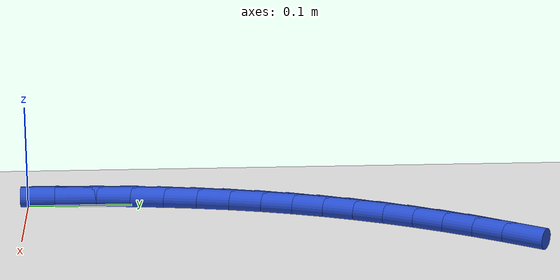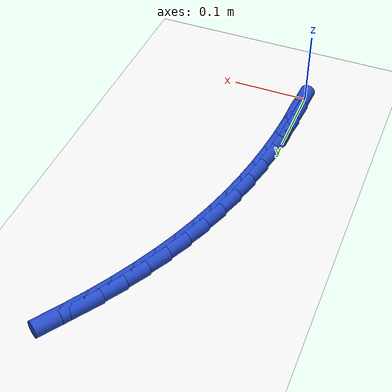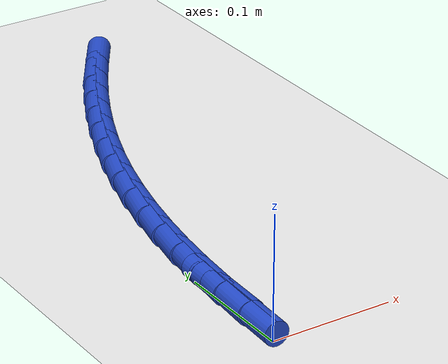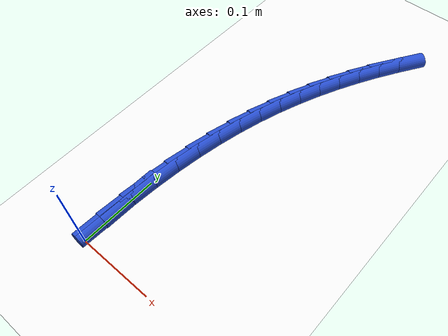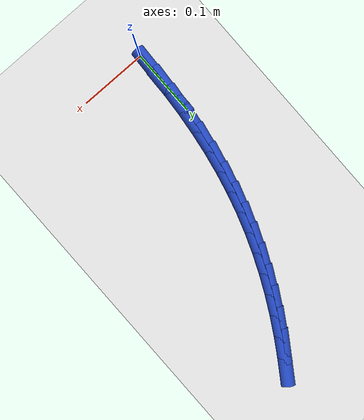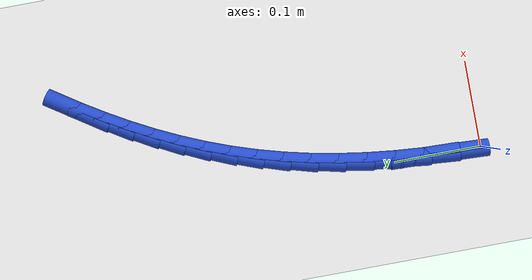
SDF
<sdf version="1.6">
 <world name="default">
  <model name="ground_plane">
   <static>1</static>
   <link name="link">
    <collision name="collision">
     <geometry><plane><normal>0 0 1</normal><size>100 100</size></plane></geometry>
     <surface><friction><ode><mu>100</mu><mu2>50</mu2></ode></friction></surface>
    </collision>
    <visual name="visual">
     <cast_shadows>0</cast_shadows>
     <geometry><plane><normal>0 0 1</normal><size>100 100</size></plane></geometry>
     <material>
      <script><uri>file://media/materials/scripts/gazebo.material</uri><name>Gazebo/WhiteGlow</name></script>
     </material>
    </visual>
   </link>
  </model>
  <model name="line">
   <link name="link_1">
    <pose>0.0003492366816804725 0.03347844089519005 0.01 0 1.57 1.5278373648724606</pose>
    <collision name="collision">
     <geometry><cylinder><radius>0.01</radius><length>0.08</length></cylinder></geometry>
    </collision>
    <visual name="visual">
     <material>
      <script><name>Gazebo/Blue</name><uri>file://media/materials/scripts/gazebo.material</uri></script>
     </material>
     <geometry><cylinder><radius>0.01</radius><length>0.08</length></cylinder></geometry>
    </visual>
   </link>
   <link name="link_2">
    <pose>0.0017802257063071424 0.06676855240438835 0.01 0 1.57 1.49415947058637</pose>
    <collision name="collision">
     <geometry><cylinder><radius>0.01</radius><length>0.08</length></cylinder></geometry>
    </collision>
    <visual name="visual">
     <material>
      <script><name>Gazebo/Blue</name><uri>file://media/materials/scripts/gazebo.material</uri></script>
     </material>
     <geometry><cylinder><radius>0.01</radius><length>0.08</length></cylinder></geometry>
    </visual>
   </link>
   <link name="link_3">
    <pose>0.004313374156254398 0.09975773537036464 0.01 0 1.57 1.4590416021160324</pose>
    <collision name="collision">
     <geometry><cylinder><radius>0.01</radius><length>0.08</length></cylinder></geometry>
    </collision>
    <visual name="visual">
     <material>
      <script><name>Gazebo/Blue</name><uri>file://media/materials/scripts/gazebo.material</uri></script>
     </material>
     <geometry><cylinder><radius>0.01</radius><length>0.08</length></cylinder></geometry>
    </visual>
   </link>
   <link name="link_4">
    <pose>0.00796908911389663 0.13233339063588856 0.01 0 1.57 1.4221731137450164</pose>
    <collision name="collision">
     <geometry><cylinder><radius>0.01</radius><length>0.08</length></cylinder></geometry>
    </collision>
    <visual name="visual">
     <material>
      <script><name>Gazebo/Blue</name><uri>file://media/materials/scripts/gazebo.material</uri></script>
     </material>
     <geometry><cylinder><radius>0.01</radius><length>0.08</length></cylinder></geometry>
    </visual>
   </link>
   <link name="link_5">
    <pose>0.012767777661608241 0.16438291904372976 0.01 0 1.57 1.3832182331818017</pose>
    <collision name="collision">
     <geometry><cylinder><radius>0.01</radius><length>0.08</length></cylinder></geometry>
    </collision>
    <visual name="visual">
     <material>
      <script><name>Gazebo/Blue</name><uri>file://media/materials/scripts/gazebo.material</uri></script>
     </material>
     <geometry><cylinder><radius>0.01</radius><length>0.08</length></cylinder></geometry>
    </visual>
   </link>
   <link name="link_6">
    <pose>0.018729846881763625 0.19579372143665794 0.01 0 1.57 1.341812516813903</pose>
    <collision name="collision">
     <geometry><cylinder><radius>0.01</radius><length>0.08</length></cylinder></geometry>
    </collision>
    <visual name="visual">
     <material>
      <script><name>Gazebo/Blue</name><uri>file://media/materials/scripts/gazebo.material</uri></script>
     </material>
     <geometry><cylinder><radius>0.01</radius><length>0.08</length></cylinder></geometry>
    </visual>
   </link>
   <link name="link_7">
    <pose>0.025875703856737174 0.22645319865744276 0.01 0 1.57 1.2979054790260176</pose>
    <collision name="collision">
     <geometry><cylinder><radius>0.01</radius><length>0.08</length></cylinder></geometry>
    </collision>
    <visual name="visual">
     <material>
      <script><name>Gazebo/Blue</name><uri>file://media/materials/scripts/gazebo.material</uri></script>
     </material>
     <geometry><cylinder><radius>0.01</radius><length>0.08</length></cylinder></geometry>
    </visual>
   </link>
   <link name="link_8">
    <pose>0.03422043899816748 0.25626935760863206 0.01 0 1.57 1.2534674418860816</pose>
    <collision name="collision">
     <geometry><cylinder><radius>0.01</radius><length>0.08</length></cylinder></geometry>
    </collision>
    <visual name="visual">
     <material>
      <script><name>Gazebo/Blue</name><uri>file://media/materials/scripts/gazebo.material</uri></script>
     </material>
     <geometry><cylinder><radius>0.01</radius><length>0.08</length></cylinder></geometry>
    </visual>
   </link>
   <link name="link_9">
    <pose>0.0437468328049661 0.2852754301740006 0.01 0 1.57 1.20969935532452</pose>
    <collision name="collision">
     <geometry><cylinder><radius>0.01</radius><length>0.08</length></cylinder></geometry>
    </collision>
    <visual name="visual">
     <material>
      <script><name>Gazebo/Blue</name><uri>file://media/materials/scripts/gazebo.material</uri></script>
     </material>
     <geometry><cylinder><radius>0.01</radius><length>0.08</length></cylinder></geometry>
    </visual>
   </link>
   <link name="link_10">
    <pose>0.054425527028528556 0.31355169492675966 0.01 0 1.57 1.1670809641107553</pose>
    <collision name="collision">
     <geometry><cylinder><radius>0.01</radius><length>0.08</length></cylinder></geometry>
    </collision>
    <visual name="visual">
     <material>
      <script><name>Gazebo/Blue</name><uri>file://media/materials/scripts/gazebo.material</uri></script>
     </material>
     <geometry><cylinder><radius>0.01</radius><length>0.08</length></cylinder></geometry>
    </visual>
   </link>
   <link name="link_11">
    <pose>0.06622714166069767 0.34117851477459826 0.01 0 1.57 1.126060294514535</pose>
    <collision name="collision">
     <geometry><cylinder><radius>0.01</radius><length>0.08</length></cylinder></geometry>
    </collision>
    <visual name="visual">
     <material>
      <script><name>Gazebo/Blue</name><uri>file://media/materials/scripts/gazebo.material</uri></script>
     </material>
     <geometry><cylinder><radius>0.01</radius><length>0.08</length></cylinder></geometry>
    </visual>
   </link>
   <link name="link_12">
    <pose>0.07912229669331619 0.3682362526252048 0.01 0 1.57 1.0870371923191466</pose>
    <collision name="collision">
     <geometry><cylinder><radius>0.01</radius><length>0.08</length></cylinder></geometry>
    </collision>
    <visual name="visual">
     <material>
      <script><name>Gazebo/Blue</name><uri>file://media/materials/scripts/gazebo.material</uri></script>
     </material>
     <geometry><cylinder><radius>0.01</radius><length>0.08</length></cylinder></geometry>
    </visual>
   </link>
   <link name="link_13">
    <pose>0.09308161211822683 0.39480527138626803 0.01 0 1.57 1.050350258451943</pose>
    <collision name="collision">
     <geometry><cylinder><radius>0.01</radius><length>0.08</length></cylinder></geometry>
    </collision>
    <visual name="visual">
     <material>
      <script><name>Gazebo/Blue</name><uri>file://media/materials/scripts/gazebo.material</uri></script>
     </material>
     <geometry><cylinder><radius>0.01</radius><length>0.08</length></cylinder></geometry>
    </visual>
   </link>
   <link name="link_14">
    <pose>0.10807570792727247 0.42096593396547655 0.01 0 1.57 1.0162693456959981</pose>
    <collision name="collision">
     <geometry><cylinder><radius>0.01</radius><length>0.08</length></cylinder></geometry>
    </collision>
    <visual name="visual">
     <material>
      <script><name>Gazebo/Blue</name><uri>file://media/materials/scripts/gazebo.material</uri></script>
     </material>
     <geometry><cylinder><radius>0.01</radius><length>0.08</length></cylinder></geometry>
    </visual>
   </link>
   <link name="link_15">
    <pose>0.12407520411229576 0.44679860327051885 0.01 0 1.57 0.9849934910647616</pose>
    <collision name="collision">
     <geometry><cylinder><radius>0.01</radius><length>0.08</length></cylinder></geometry>
    </collision>
    <visual name="visual">
     <material>
      <script><name>Gazebo/Blue</name><uri>file://media/materials/scripts/gazebo.material</uri></script>
     </material>
     <geometry><cylinder><radius>0.01</radius><length>0.08</length></cylinder></geometry>
    </visual>
   </link>
   <link name="link_271">
    <pose>0.0003496900055316183 0.033467831298794465 0.01 0 1.57 1.5276460742663958</pose>
    <collision name="collision">
     <geometry><cylinder><radius>0.01</radius><length>0.08</length></cylinder></geometry>
    </collision>
    <visual name="visual">
     <material>
      <script><name>Gazebo/Blue</name><uri>file://media/materials/scripts/gazebo.material</uri></script>
     </material>
     <geometry><cylinder><radius>0.01</radius><length>0.08</length></cylinder></geometry>
    </visual>
   </link>
   <link name="link_272">
    <pose>0.0017838522971162377 0.06668367563322022 0.01 0 1.57 1.5440517458111003</pose>
    <collision name="collision">
     <geometry><cylinder><radius>0.01</radius><length>0.08</length></cylinder></geometry>
    </collision>
    <visual name="visual">
     <material>
      <script><name>Gazebo/Blue</name><uri>file://media/materials/scripts/gazebo.material</uri></script>
     </material>
     <geometry><cylinder><radius>0.01</radius><length>0.08</length></cylinder></geometry>
    </visual>
   </link>
  </model>
 </world>
</sdf>
